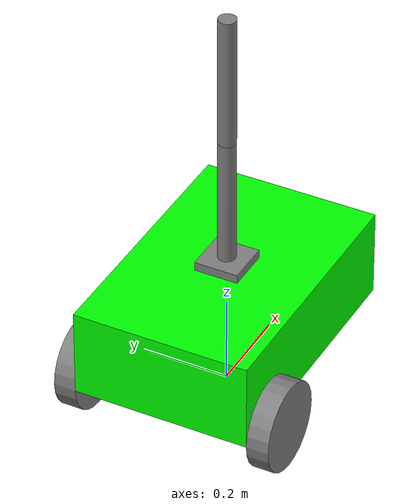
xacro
<?xml version = "1.0"?>
<robot name="my_robot" xmlns:xacro = "http://www.ros.org/wiki/xacro">

    <xacro:include filename = "common_properties.xacro" />
    <xacro:include filename = "mobile_base.xacro" />
    <xacro:include filename = "mobile_base_gazebo.xacro" />
    <xacro:include filename = "camera.xacro"/>
    <xacro:include filename = "arm.xacro"/>
</robot>

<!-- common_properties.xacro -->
<robot xmlns:xacro = "http://www.ros.org/wiki/xacro">

    <material name = "green">
        <color rgba="0.0 1.0 0.0 1"/>
    </material>

    <material name="grey">
        <color rgba="0.5 0.5 0.5 1.0"/>
    </material>

    <xacro:macro name = "box_inertia" params = "m l w h xyz rpy">
        <inertial>
            <origin xyz="${xyz}" rpy="${rpy}"/>
            <mass value="${m}"/>
            <inertia ixx="${(m/12)*(h*h+l*l)}" ixy="0.0" ixz="0.0" iyy="${(m/12)*(w*w+h*h)}" iyz="0.0" izz="${(m/12)*(w*w+h*h)}"/>
        </inertial>
    </xacro:macro>

    <xacro:macro name = "wheel_inertia" params = "m r h xyz rpy">
        <inertial>

            <origin xyz="${xyz}" rpy="${rpy}"/>
            <mass value="${m}"/>
            <inertia ixx="${(m/12)*(3*r*r+h*h)}" ixy="0.0" ixz="0.0" iyy="${(m/12)*(3*r*r+h*h)}" iyz="0.0" izz="${(m/2)*(r*r)}"/>
        </inertial>
    </xacro:macro>

    <xacro:macro name = "caster_wheel_inertia" params = "m r xyz rpy">
        <inertial>
            <origin xyz="${xyz}" rpy="${rpy}"/>
            <mass value="${m}"/>
            <inertia ixx="${(2*m/5)*r*r}" ixy="0.0" ixz="0.0" iyy="${(2*m/5)*r*r}" iyz="0.0" izz="${(2*m/5)*r*r}"/>
        </inertial>
    </xacro:macro>

</robot>

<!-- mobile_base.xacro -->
<robot xmlns:xacro = "http://www.ros.org/wiki/xacro">

    <link name="base_link">
            <visual>
                <geometry>
                    <box size="0.6 0.4 0.2"/>
                </geometry>
                <origin xyz="0.0 0.0 0.1" rpy="0.0 0.0 0.0"/>
                <material name = "green" />
            </visual>
            <xacro:box_inertia m="5.0" l="0.6" w="0.4" h="0.2" xyz="0.0 0.0 0.1" rpy="0.0 0.0 0.0"/>
            <collision>
            <geometry>
                    <box size="0.6 0.4 0.2"/>
            </geometry>
                <origin xyz="0.0 0.0 0.1" rpy="0.0 0.0 0.0"/>
            </collision>
    </link>

    <link name="right_wheel_link">
        <visual>
            <geometry>
                <cylinder radius="0.1" length="0.05"/>
            </geometry>
            <origin xyz="0.0 0.025 0.0" rpy="1.57 0.0 0.0"/>
            <material name = "grey" />
        </visual>
        <xacro:wheel_inertia m="1.0" r="0.1" h="0.05" xyz="0.0 0.025 0.0" rpy="1.57 0.0 0.0"/>
        <collision>
            <geometry>
                <cylinder radius="0.1" length="0.05"/>
            </geometry>
            <origin xyz="0.0 0.025 0.0" rpy="1.57 0.0 0.0"/>
        </collision>
    </link>

    <link name="left_wheel_link">
        <visual>
            <geometry>
                <cylinder radius="0.1" length="0.05"/>
            </geometry>
            <origin xyz="0.0 -0.025 0.0" rpy="1.57 0.0 0.0"/>
            <material name = "grey" />
        </visual>
        <xacro:wheel_inertia m="1.0" r="0.1" h="0.05" xyz="0.0 -0.025 0.0" rpy="1.57 0.0 0.0"/>
        <collision>
            <geometry>
                <cylinder radius="0.1" length="0.05"/>
            </geometry>
            <origin xyz="0.0 -0.025 0.0" rpy="1.57 0.0 0.0"/>
        </collision>
    </link>

    <link name="base_footprint"/>

    <link name="caster_wheel_link">
        <visual>
            <geometry>
                <sphere radius="0.05"/>
            </geometry>
            <origin xyz="0.0 0.0 0.0" rpy="0.0 0.0 0.0"/>
            <material name="grey"/>
        </visual>
        <xacro:caster_wheel_inertia m="0.5" r="0.05" xyz="0.0 0.0 0.0" rpy="0.0 0.0 0.0"/>
        <collision>
            <geometry>
                <sphere radius="0.05"/>
            </geometry>
            <origin xyz="0.0 0.0 0.0" rpy="0.0 0.0 0.0"/>
        </collision>
    </link>

    <joint name="base_right_wheel_joint" type="continuous">
        <parent link="base_link"/>
        <child link="right_wheel_link"/>
        <origin xyz="-0.2 0.2 0.0" rpy="0.0 0.0 0.0"/>
        <axis xyz="0.0 1.0 0.0"/>
    </joint>

    <joint name="base_left_wheel_joint" type="continuous">
        <parent link="base_link"/>
        <child link="left_wheel_link"/>
        <origin xyz="-0.2 -0.2 0.0" rpy="0.0 0.0 0.0"/>
        <axis xyz="0.0 1.0 0.0"/>
    </joint>

    <joint name="base_caster_wheel_joint" type="fixed">
        <parent link="base_link"/>
        <child link="caster_wheel_link"/>
        <origin xyz="0.2 0.0 -0.05" rpy="0.0 0.0 0.0"/>
    </joint>

    <joint name="base_joint" type="fixed">
        <parent link="base_footprint"/>
        <child link="base_link"/>
        <origin xyz="0.0 0.0 0.1" rpy="0.0 0.0 0.0"/>
    </joint>

</robot>

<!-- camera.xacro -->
<robot xmlns:xacro = "http://www.ros.org/wiki/xacro">
    <link name="camera_link">
        <visual>
            <geometry>
                <box size="0.01 0.1 0.05"/>
            </geometry>
            <origin xyz="0.005 0.0 0.0" rpy="0.0 0.0 0.0"/>
            <material name="grey"/>
        </visual>
        <collision>
                <geometry>
                    <box size="0.01 0.1 0.05"/>
                </geometry>
        </collision>
         <xacro:box_inertia m="0.1" l="0.01" w="0.1" h="0.05" xyz="0 0 0" rpy="0 0 0"/>

    </link>

    <joint name="base_camera_joint" type="fixed">
        <parent link="base_link"/>
        <child link="camera_link"/>
        <origin xyz="0.3 0.0 0.1" rpy="0.0 0.0 0.0"/>
    </joint>

        <gazebo reference="camera_link">
        <material>
            Gazebo/Red
        </material>
        <sensor name="camera_sensor" type="camera">
            <pose>0 0 0 0 0 0</pose>
            <visualize>true</visualize>
            <update_rate>10.0</update_rate>
            <plugin name="camera_controller" filename="libgazebo_ros_camera.so">
                <frame_name>camera_link</frame_name>
            </plugin>
        </sensor>
    </gazebo>

</robot>

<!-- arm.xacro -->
<robot xmlns:xacro="http://www.ros.org/wiki/xacro">
    <link name="arm_base_link">
        <visual>
            <origin xyz="0.0 0.0 0.0" rpy="0.0 0.0 0.0"/>
            <geometry>
                <box size="0.1 0.1 0.02"/>
            </geometry>
            <material name="grey"/>
        </visual>
        <xacro:box_inertia m="0.5" l="0.1" w="0.1" h="0.02" xyz="0 0 0" rpy="0 0 0"/>
        <collision>
            <origin xyz="0.0 0.0 0.0" rpy="0.0 0.0 0.0"/>
            <geometry>
                <box size="0.1 0.1 0.02"/>
            </geometry>
        </collision>
    </link>

    <link name="forearm_link">
        <visual>
            <origin xyz="0.0 0.0 0.15" rpy="0.0 0.0 0.0"/>
            <geometry>
                <cylinder radius="0.02" length="0.3"/>
            </geometry>
            <material name="grey"/>
        </visual>
        <xacro:wheel_inertia m="0.3" r="0.02" h="0.3" xyz="0.0 0.0 0.15" rpy="0.0 0.0 0.0"/>
        <collision>
            <origin xyz="0.0 0.0 0.15" rpy="0.0 0.0 0.0"/>
            <geometry>
                <cylinder radius="0.02" length="0.3"/>
            </geometry>
        </collision>
    </link>

    <link name="hand_link">
        <visual>
            <origin xyz="0.0 0.0 0.15" rpy="0.0 0.0 0.0"/>
            <geometry>
                <cylinder radius="0.02" length="0.3"/>
            </geometry>
            <material name="grey"/>
        </visual>
        <xacro:wheel_inertia m="0.3" r="0.02" h="0.3" xyz="0.0 0.0 0.15" rpy="0.0 0.0 0.0"/>
        <collision>
            <origin xyz="0.0 0.0 0.15" rpy="0.0 0.0 0.0"/>
            <geometry>
                <cylinder radius="0.02" length="0.3"/>
            </geometry>
        </collision>
    </link>

    <joint name="arm_base_forearm_joint" type="revolute">
        <origin xyz="0.0 0.0 0.0" rpy="0.0 0.0 0.0"/>
        <parent link="arm_base_link"/>
        <child link="forearm_link"/>
        <axis xyz="0.0 1.0 0.0"/>
        <limit lower="0.0" upper="${pi/2}" effort="100" velocity="100"/>
        <dynamics friction="0.05" damping="0.1"/>
    </joint>

    <joint name="forearm_hand_joint" type="revolute">
        <origin xyz="0.0 0.0 0.3" rpy="0.0 0.0 0.0"/>
        <parent link="forearm_link"/>
        <child link="hand_link"/>
        <axis xyz="0.0 1.0 0.0"/>
        <limit lower="0.0" upper="${pi/2}" effort="100" velocity="100"/>
    </joint>

    <joint name="base_arm_base_joint" type="fixed">
        <origin xyz="0.0 0.0 0.21" rpy="0.0 0.0 0.0"/>
        <parent link="base_link"/>
        <child link="arm_base_link"/>
    </joint>
</robot>
